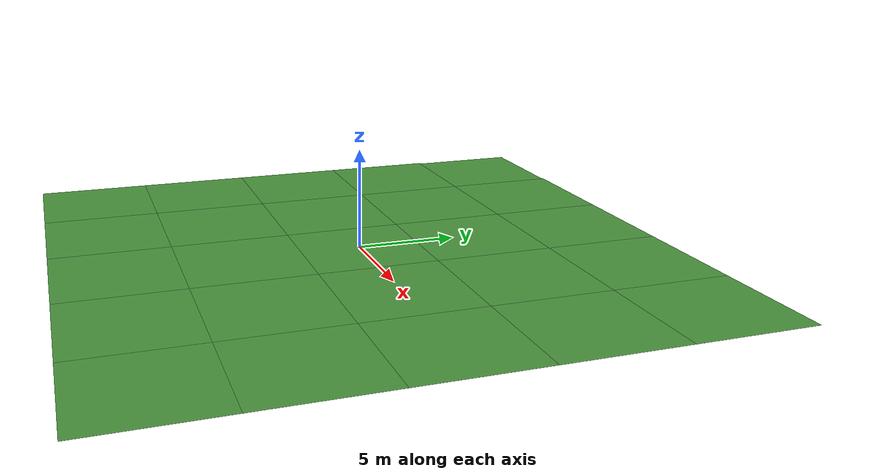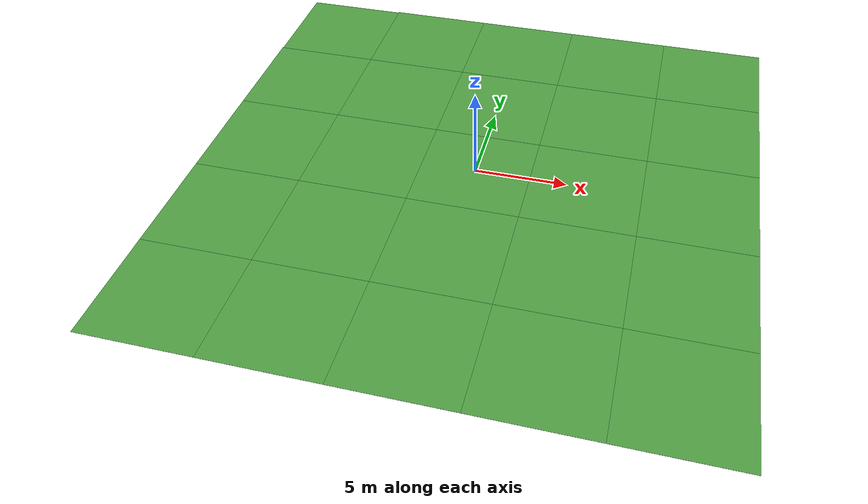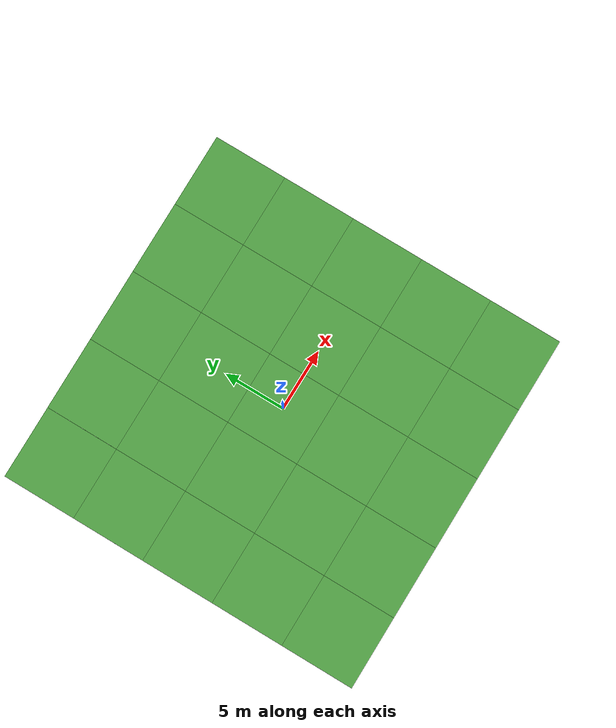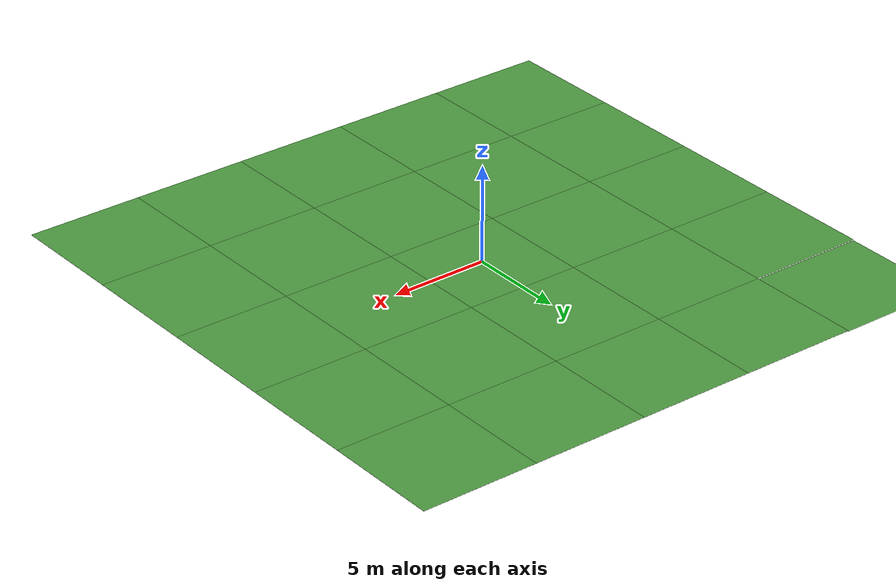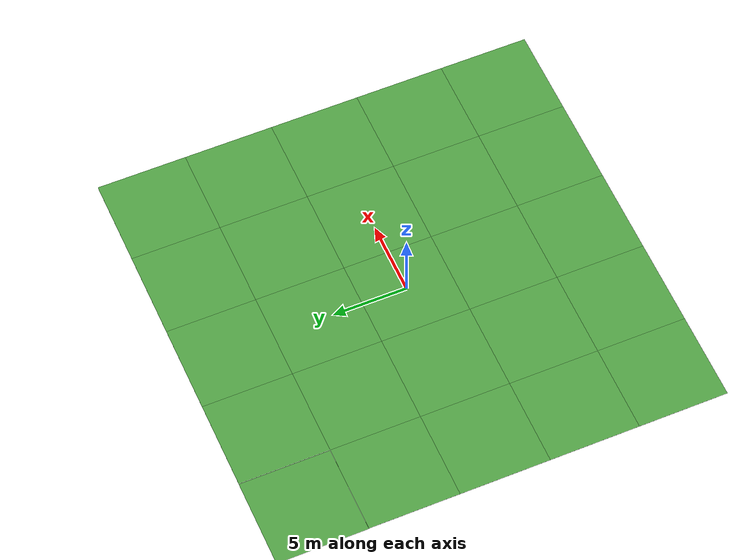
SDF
<?xml version='1.0'?>
<sdf version='1.4'>
	<model name='grass_plane'>
		<static>true</static>
		<link name='link'>
			<collision name='collision'>
				<geometry>
					<plane>
						<normal>0 0 1</normal>
						<size>30 30</size>
					</plane>
				</geometry>
				<surface>
					<friction>
						<ode>
							<mu>0.5</mu>
							<mu2>.5</mu2>
						</ode>
					</friction>
				</surface>
			</collision>

			<visual name='visual00'>
				<pose>-12 12 0 0 0 0</pose>

				<cast_shadows>false</cast_shadows>
				<geometry>
					<plane>
						<normal>0 0 1</normal>
						<size>6 6</size>
					</plane>
				</geometry>
				<material>
					<script>
						<uri>model://grass_plane/materials/scripts</uri>
						<uri>model://grass_plane/materials/textures</uri>
						<name>vrc/grass</name>
					</script>
				</material>
			</visual>

			<visual name='visual01'>
				<pose>-6 12 0 0 0 0</pose>

				<cast_shadows>false</cast_shadows>
				<geometry>
					<plane>
						<normal>0 0 1</normal>
						<size>6 6</size>
					</plane>
				</geometry>
				<material>
					<script>
						<uri>model://grass_plane/materials/scripts</uri>
						<uri>model://grass_plane/materials/textures</uri>
						<name>vrc/grass</name>
					</script>
				</material>
			</visual>

			<visual name='visual02'>
				<pose>0 12 0 0 0 0</pose>

				<cast_shadows>false</cast_shadows>
				<geometry>
					<plane>
						<normal>0 0 1</normal>
						<size>6 6</size>
					</plane>
				</geometry>
				<material>
					<script>
						<uri>model://grass_plane/materials/scripts</uri>
						<uri>model://grass_plane/materials/textures</uri>
						<name>vrc/grass</name>
					</script>
				</material>
			</visual>

			<visual name='visual03'>
				<pose>6 12 0 0 0 0</pose>

				<cast_shadows>false</cast_shadows>
				<geometry>
					<plane>
						<normal>0 0 1</normal>
						<size>6 6</size>
					</plane>
				</geometry>
				<material>
					<script>
						<uri>model://grass_plane/materials/scripts</uri>
						<uri>model://grass_plane/materials/textures</uri>
						<name>vrc/grass</name>
					</script>
				</material>
			</visual>

			<visual name='visual04'>
				<pose>12 12 0 0 0 0</pose>

				<cast_shadows>false</cast_shadows>
				<geometry>
					<plane>
						<normal>0 0 1</normal>
						<size>6 6</size>
					</plane>
				</geometry>
				<material>
					<script>
						<uri>model://grass_plane/materials/scripts</uri>
						<uri>model://grass_plane/materials/textures</uri>
						<name>vrc/grass</name>
					</script>
				</material>
			</visual>

			<visual name='visual10'>
				<pose>-12 6 0 0 0 0</pose>

				<cast_shadows>false</cast_shadows>
				<geometry>
					<plane>
						<normal>0 0 1</normal>
						<size>6 6</size>
					</plane>
				</geometry>
				<material>
					<script>
						<uri>model://grass_plane/materials/scripts</uri>
						<uri>model://grass_plane/materials/textures</uri>
						<name>vrc/grass</name>
					</script>
				</material>
			</visual>

			<visual name='visual11'>
				<pose>-6 6 0 0 0 0</pose>

				<cast_shadows>false</cast_shadows>
				<geometry>
					<plane>
						<normal>0 0 1</normal>
						<size>6 6</size>
					</plane>
				</geometry>
				<material>
					<script>
						<uri>model://grass_plane/materials/scripts</uri>
						<uri>model://grass_plane/materials/textures</uri>
						<name>vrc/grass</name>
					</script>
				</material>
			</visual>

			<visual name='visual12'>
				<pose>0 6 0 0 0 0</pose>

				<cast_shadows>false</cast_shadows>
				<geometry>
					<plane>
						<normal>0 0 1</normal>
						<size>6 6</size>
					</plane>
				</geometry>
				<material>
					<script>
						<uri>model://grass_plane/materials/scripts</uri>
						<uri>model://grass_plane/materials/textures</uri>
						<name>vrc/grass</name>
					</script>
				</material>
			</visual>

			<visual name='visual13'>
				<pose>6 6 0 0 0 0</pose>

				<cast_shadows>false</cast_shadows>
				<geometry>
					<plane>
						<normal>0 0 1</normal>
						<size>6 6</size>
					</plane>
				</geometry>
				<material>
					<script>
						<uri>model://grass_plane/materials/scripts</uri>
						<uri>model://grass_plane/materials/textures</uri>
						<name>vrc/grass</name>
					</script>
				</material>
			</visual>

			<visual name='visual14'>
				<pose>12 6 0 0 0 0</pose>

				<cast_shadows>false</cast_shadows>
				<geometry>
					<plane>
						<normal>0 0 1</normal>
						<size>6 6</size>
					</plane>
				</geometry>
				<material>
					<script>
						<uri>model://grass_plane/materials/scripts</uri>
						<uri>model://grass_plane/materials/textures</uri>
						<name>vrc/grass</name>
					</script>
				</material>
			</visual>

			<visual name='visual20'>
				<pose>-12 0 0 0 0 0</pose>

				<cast_shadows>false</cast_shadows>
				<geometry>
					<plane>
						<normal>0 0 1</normal>
						<size>6 6</size>
					</plane>
				</geometry>
				<material>
					<script>
						<uri>model://grass_plane/materials/scripts</uri>
						<uri>model://grass_plane/materials/textures</uri>
						<name>vrc/grass</name>
					</script>
				</material>
			</visual>

			<visual name='visual21'>
				<pose>-6 0 0 0 0 0</pose>

				<cast_shadows>false</cast_shadows>
				<geometry>
					<plane>
						<normal>0 0 1</normal>
						<size>6 6</size>
					</plane>
				</geometry>
				<material>
					<script>
						<uri>model://grass_plane/materials/scripts</uri>
						<uri>model://grass_plane/materials/textures</uri>
						<name>vrc/grass</name>
					</script>
				</material>
			</visual>

			<visual name='visual22'>
				<pose>0 0 0 0 0 0</pose>

				<cast_shadows>false</cast_shadows>
				<geometry>
					<plane>
						<normal>0 0 1</normal>
						<size>6 6</size>
					</plane>
				</geometry>
				<material>
					<script>
						<uri>model://grass_plane/materials/scripts</uri>
						<uri>model://grass_plane/materials/textures</uri>
						<name>vrc/grass</name>
					</script>
				</material>
			</visual>

			<visual name='visual23'>
				<pose>6 0 0 0 0 0</pose>

				<cast_shadows>false</cast_shadows>
				<geometry>
					<plane>
						<normal>0 0 1</normal>
						<size>6 6</size>
					</plane>
				</geometry>
				<material>
					<script>
						<uri>model://grass_plane/materials/scripts</uri>
						<uri>model://grass_plane/materials/textures</uri>
						<name>vrc/grass</name>
					</script>
				</material>
			</visual>

			<visual name='visual24'>
				<pose>12 0 0 0 0 0</pose>

				<cast_shadows>false</cast_shadows>
				<geometry>
					<plane>
						<normal>0 0 1</normal>
						<size>6 6</size>
					</plane>
				</geometry>
				<material>
					<script>
						<uri>model://grass_plane/materials/scripts</uri>
						<uri>model://grass_plane/materials/textures</uri>
						<name>vrc/grass</name>
					</script>
				</material>
			</visual>

			<visual name='visual30'>
				<pose>-12 -6 0 0 0 0</pose>

				<cast_shadows>false</cast_shadows>
				<geometry>
					<plane>
						<normal>0 0 1</normal>
						<size>6 6</size>
					</plane>
				</geometry>
				<material>
					<script>
						<uri>model://grass_plane/materials/scripts</uri>
						<uri>model://grass_plane/materials/textures</uri>
						<name>vrc/grass</name>
					</script>
				</material>
			</visual>

			<visual name='visual31'>
				<pose>-6 -6 0 0 0 0</pose>

				<cast_shadows>false</cast_shadows>
				<geometry>
					<plane>
						<normal>0 0 1</normal>
						<size>6 6</size>
					</plane>
				</geometry>
				<material>
					<script>
						<uri>model://grass_plane/materials/scripts</uri>
						<uri>model://grass_plane/materials/textures</uri>
						<name>vrc/grass</name>
					</script>
				</material>
			</visual>

			<visual name='visual32'>
				<pose>0 -6 0 0 0 0</pose>

				<cast_shadows>false</cast_shadows>
				<geometry>
					<plane>
						<normal>0 0 1</normal>
						<size>6 6</size>
					</plane>
				</geometry>
				<material>
					<script>
						<uri>model://grass_plane/materials/scripts</uri>
						<uri>model://grass_plane/materials/textures</uri>
						<name>vrc/grass</name>
					</script>
				</material>
			</visual>

			<visual name='visual33'>
				<pose>6 -6 0 0 0 0</pose>

				<cast_shadows>false</cast_shadows>
				<geometry>
					<plane>
						<normal>0 0 1</normal>
						<size>6 6</size>
					</plane>
				</geometry>
				<material>
					<script>
						<uri>model://grass_plane/materials/scripts</uri>
						<uri>model://grass_plane/materials/textures</uri>
						<name>vrc/grass</name>
					</script>
				</material>
			</visual>

			<visual name='visual34'>
				<pose>12 -6 0 0 0 0</pose>

				<cast_shadows>false</cast_shadows>
				<geometry>
					<plane>
						<normal>0 0 1</normal>
						<size>6 6</size>
					</plane>
				</geometry>
				<material>
					<script>
						<uri>model://grass_plane/materials/scripts</uri>
						<uri>model://grass_plane/materials/textures</uri>
						<name>vrc/grass</name>
					</script>
				</material>
			</visual>

			<visual name='visual40'>
				<pose>-12 -12 0 0 0 0</pose>

				<cast_shadows>false</cast_shadows>
				<geometry>
					<plane>
						<normal>0 0 1</normal>
						<size>6 6</size>
					</plane>
				</geometry>
				<material>
					<script>
						<uri>model://grass_plane/materials/scripts</uri>
						<uri>model://grass_plane/materials/textures</uri>
						<name>vrc/grass</name>
					</script>
				</material>
			</visual>

			<visual name='visual41'>
				<pose>-6 -12 0 0 0 0</pose>

				<cast_shadows>false</cast_shadows>
				<geometry>
					<plane>
						<normal>0 0 1</normal>
						<size>6 6</size>
					</plane>
				</geometry>
				<material>
					<script>
						<uri>model://grass_plane/materials/scripts</uri>
						<uri>model://grass_plane/materials/textures</uri>
						<name>vrc/grass</name>
					</script>
				</material>
			</visual>

			<visual name='visual42'>
				<pose>0 -12 0 0 0 0</pose>

				<cast_shadows>false</cast_shadows>
				<geometry>
					<plane>
						<normal>0 0 1</normal>
						<size>6 6</size>
					</plane>
				</geometry>
				<material>
					<script>
						<uri>model://grass_plane/materials/scripts</uri>
						<uri>model://grass_plane/materials/textures</uri>
						<name>vrc/grass</name>
					</script>
				</material>
			</visual>

			<visual name='visual43'>
				<pose>6 -12 0 0 0 0</pose>

				<cast_shadows>false</cast_shadows>
				<geometry>
					<plane>
						<normal>0 0 1</normal>
						<size>6 6</size>
					</plane>
				</geometry>
				<material>
					<script>
						<uri>model://grass_plane/materials/scripts</uri>
						<uri>model://grass_plane/materials/textures</uri>
						<name>vrc/grass</name>
					</script>
				</material>
			</visual>

			<visual name='visual44'>
				<pose>12 -12 0 0 0 0</pose>

				<cast_shadows>false</cast_shadows>
				<geometry>
					<plane>
						<normal>0 0 1</normal>
						<size>6 6</size>
					</plane>
				</geometry>
				<material>
					<script>
						<uri>model://grass_plane/materials/scripts</uri>
						<uri>model://grass_plane/materials/textures</uri>
						<name>vrc/grass</name>
					</script>
				</material>
			</visual>

		</link>
	</model>
</sdf>
